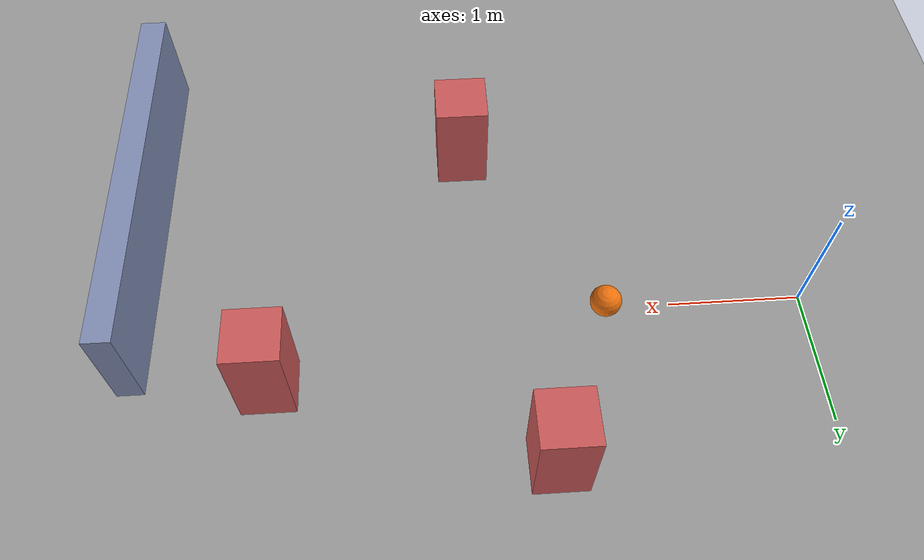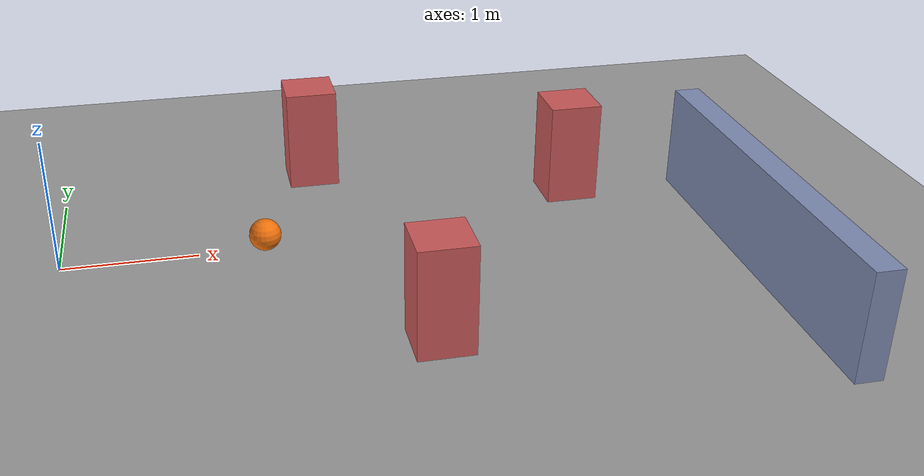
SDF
<?xml version="1.0" ?>
<sdf version="1.9">
  <world name="flat_ground">
    <physics name="1ms" type="ignored">
      <max_step_size>0.001</max_step_size>
      <real_time_factor>1.0</real_time_factor>
    </physics>
    <plugin filename="gz-sim-physics-system" name="gz::sim::systems::Physics"/>
    <plugin filename="gz-sim-user-commands-system" name="gz::sim::systems::UserCommands"/>
    <plugin filename="gz-sim-scene-broadcaster-system" name="gz::sim::systems::SceneBroadcaster"/>
    <plugin filename="gz-sim-sensors-system" name="gz::sim::systems::Sensors">
      <render_engine>ogre2</render_engine>
    </plugin>
    <plugin filename="gz-sim-imu-system" name="gz::sim::systems::Imu"/>
    <plugin filename="gz-sim-contact-system" name="gz::sim::systems::Contact"/>

    <light type="directional" name="sun">
      <cast_shadows>true</cast_shadows>
      <pose>0 0 10 0 0 0</pose>
      <diffuse>0.8 0.8 0.8 1</diffuse>
      <specular>0.2 0.2 0.2 1</specular>
      <attenuation>
        <range>1000</range>
        <constant>0.9</constant>
        <linear>0.01</linear>
        <quadratic>0.001</quadratic>
      </attenuation>
      <direction>-0.5 0.1 -0.9</direction>
    </light>

    <model name="ground_plane">
      <static>true</static>
      <link name="link">
        <collision name="collision">
          <geometry>
            <plane>
              <normal>0 0 1</normal>
              <size>100 100</size>
            </plane>
          </geometry>
          <surface>
            <friction>
              <ode>
                <mu>0.8</mu>
                <mu2>0.8</mu2>
              </ode>
            </friction>
          </surface>
        </collision>
        <visual name="visual">
          <geometry>
            <plane>
              <normal>0 0 1</normal>
              <size>100 100</size>
            </plane>
          </geometry>
          <material>
            <ambient>0.5 0.5 0.5 1</ambient>
            <diffuse>0.6 0.6 0.6 1</diffuse>
          </material>
        </visual>
      </link>
    </model>

    <!-- Vat can tinh cho ne vat can + SLAM (quadruped_navigation/lidar).
         Cot + tuong bo tri quanh diem spawn de robot LiDAR quet + ne + dung ban do. -->
    <model name="obstacles">
      <static>true</static>
      <link name="link">
        <!-- 3 cot vuong -->
        <collision name="c1"><pose>2.0 1.2 0.4 0 0 0</pose><geometry><box><size>0.4 0.4 0.8</size></box></geometry></collision>
        <visual name="c1v"><pose>2.0 1.2 0.4 0 0 0</pose><geometry><box><size>0.4 0.4 0.8</size></box></geometry><material><ambient>0.7 0.3 0.3 1</ambient><diffuse>0.8 0.35 0.35 1</diffuse></material></visual>
        <collision name="c2"><pose>2.5 -1.5 0.4 0 0 0</pose><geometry><box><size>0.4 0.4 0.8</size></box></geometry></collision>
        <visual name="c2v"><pose>2.5 -1.5 0.4 0 0 0</pose><geometry><box><size>0.4 0.4 0.8</size></box></geometry><material><ambient>0.7 0.3 0.3 1</ambient><diffuse>0.8 0.35 0.35 1</diffuse></material></visual>
        <collision name="c3"><pose>4.0 0.5 0.4 0 0 0</pose><geometry><box><size>0.4 0.4 0.8</size></box></geometry></collision>
        <visual name="c3v"><pose>4.0 0.5 0.4 0 0 0</pose><geometry><box><size>0.4 0.4 0.8</size></box></geometry><material><ambient>0.7 0.3 0.3 1</ambient><diffuse>0.8 0.35 0.35 1</diffuse></material></visual>
        <!-- 1 buc tuong -->
        <collision name="w1"><pose>5.0 -1.0 0.4 0 0 0</pose><geometry><box><size>0.2 3.0 0.8</size></box></geometry></collision>
        <visual name="w1v"><pose>5.0 -1.0 0.4 0 0 0</pose><geometry><box><size>0.2 3.0 0.8</size></box></geometry><material><ambient>0.4 0.45 0.6 1</ambient><diffuse>0.5 0.55 0.7 1</diffuse></material></visual>
      </link>
    </model>

    <model name="target_ball">
      <pose>1.5 0 0.12 0 0 0</pose>
      <link name="link">
        <inertial>
          <mass>0.5</mass>
          <inertia>
            <ixx>0.001</ixx><iyy>0.001</iyy><izz>0.001</izz>
            <ixy>0</ixy><ixz>0</ixz><iyz>0</iyz>
          </inertia>
        </inertial>
        <collision name="collision">
          <geometry>
            <sphere><radius>0.12</radius></sphere>
          </geometry>
        </collision>
        <visual name="visual">
          <geometry>
            <sphere><radius>0.12</radius></sphere>
          </geometry>
          <material>
            <ambient>0.9 0.4 0.05 1</ambient>
            <diffuse>0.95 0.45 0.05 1</diffuse>
          </material>
        </visual>
      </link>
      <plugin filename="gz-sim-velocity-control-system" name="gz::sim::systems::VelocityControl">
        <link_name>link</link_name>
      </plugin>
    </model>

    <gravity>0 0 -9.81</gravity>
  </world>
</sdf>
